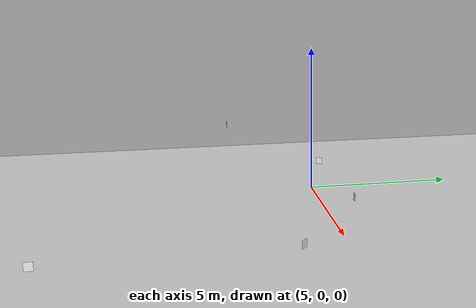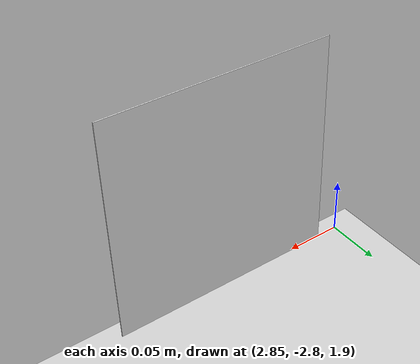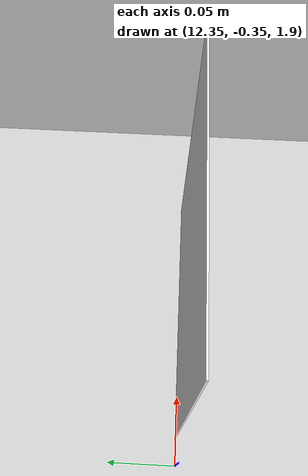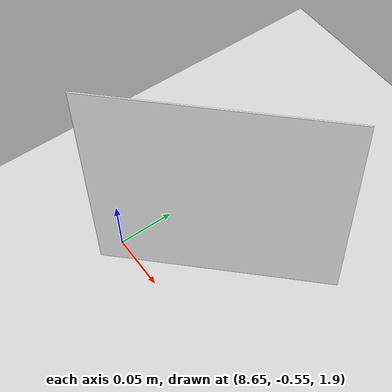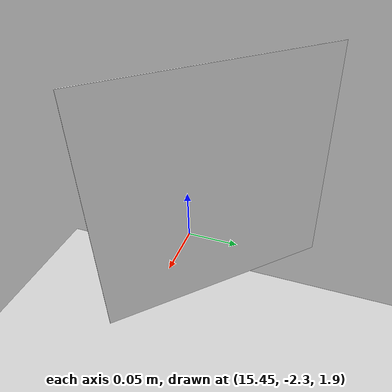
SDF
<sdf version="1.5">
 <world name="default">
  <scene><ambient>0.0 0.0 0.0 1.0</ambient><shadows>0</shadows></scene>
  <include><uri>model://sun</uri></include>
  <include><uri>model://ground_plane</uri></include>
  <include><pose>2.97 -2.8 2.0 0 1.57 0</pose><uri>model://aruco_1</uri></include>
  <include><pose>8.72 -0.5 2.0 0 1.57 0.785</pose><uri>model://aruco_2</uri></include>
  <include><pose>12.47 -0.35 2.0 0 1.57 0</pose><uri>model://aruco_3</uri></include>
  <include><pose>15.50 -2.25 2.0 0 1.57 -0.785</pose><uri>model://aruco_4</uri></include>
  <include><pose>15.65 -7.97 2.0 0 1.57 -1.57</pose><uri>model://aruco_5</uri></include>
 </world>
</sdf>

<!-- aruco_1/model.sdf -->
<sdf version="1.9">
  <model name="aruco_1">
    <static>true</static>
    <link name="link"><inertial><mass>1.0</mass><inertia><ixx>0.1</ixx><ixy>0</ixy><ixz>0</ixz><iyy>0.1</iyy><iyz>0</iyz><izz>0.1</izz></inertia></inertial>
      <visual name="visual">
        <pose>0 0 0 0 1.5708 0</pose>
        <geometry>
          <box>
            <size>0.20 0.001 0.20</size>
          </box>
        </geometry>
        <material>
          <ambient>1 1 1 1</ambient>
          <diffuse>1 1 1 1</diffuse>
          <pbr>
            <metal>
              <albedo_map>model://aruco_1/materials/textures/aruco_1.png</albedo_map>
            </metal>
          </pbr>
        </material>
      </visual>
    </link>
  </model>
</sdf>

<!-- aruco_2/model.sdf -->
<sdf version="1.9">
  <model name="aruco_2">
    <static>true</static>
    <link name="link"><inertial><mass>1.0</mass><inertia><ixx>0.1</ixx><ixy>0</ixy><ixz>0</ixz><iyy>0.1</iyy><iyz>0</iyz><izz>0.1</izz></inertia></inertial>
      <visual name="visual">
        <pose>0 0 0 0 1.5708 0</pose>
        <geometry>
          <box>
            <size>0.20 0.001 0.20</size>
          </box>
        </geometry>
        <material>
          <ambient>1 1 1 1</ambient>
          <diffuse>1 1 1 1</diffuse>
          <pbr>
            <metal>
              <albedo_map>model://aruco_2/materials/textures/aruco_2.png</albedo_map>
            </metal>
          </pbr>
        </material>
      </visual>
    </link>
  </model>
</sdf>

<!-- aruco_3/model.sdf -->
<sdf version="1.9">
  <model name="aruco_3">
    <static>true</static>
    <link name="link"><inertial><mass>1.0</mass><inertia><ixx>0.1</ixx><ixy>0</ixy><ixz>0</ixz><iyy>0.1</iyy><iyz>0</iyz><izz>0.1</izz></inertia></inertial>
      <visual name="visual">
        <pose>0 0 0 0 1.5708 0</pose>
        <geometry>
          <box>
            <size>0.20 0.001 0.20</size>
          </box>
        </geometry>
        <material>
          <ambient>1 1 1 1</ambient>
          <diffuse>1 1 1 1</diffuse>
          <pbr>
            <metal>
              <albedo_map>model://aruco_3/materials/textures/aruco_3.png</albedo_map>
            </metal>
          </pbr>
        </material>
      </visual>
    </link>
  </model>
</sdf>

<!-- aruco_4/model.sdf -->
<sdf version="1.9">
  <model name="aruco_4">
    <static>true</static>
    <link name="link"><inertial><mass>1.0</mass><inertia><ixx>0.1</ixx><ixy>0</ixy><ixz>0</ixz><iyy>0.1</iyy><iyz>0</iyz><izz>0.1</izz></inertia></inertial>
      <visual name="visual">
        <pose>0 0 0 0 1.5708 0</pose>
        <geometry>
          <box>
            <size>0.20 0.001 0.20</size>
          </box>
        </geometry>
        <material>
          <ambient>1 1 1 1</ambient>
          <diffuse>1 1 1 1</diffuse>
          <pbr>
            <metal>
              <albedo_map>model://aruco_4/materials/textures/aruco_4.png</albedo_map>
            </metal>
          </pbr>
        </material>
      </visual>
    </link>
  </model>
</sdf>

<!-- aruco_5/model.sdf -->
<sdf version="1.9">
  <model name="aruco_5">
    <static>true</static>
    <link name="link"><inertial><mass>1.0</mass><inertia><ixx>0.1</ixx><ixy>0</ixy><ixz>0</ixz><iyy>0.1</iyy><iyz>0</iyz><izz>0.1</izz></inertia></inertial>
      <visual name="visual">
        <pose>0 0 0 0 1.5708 0</pose>
        <geometry>
          <box>
            <size>0.20 0.001 0.20</size>
          </box>
        </geometry>
        <material>
          <ambient>1 1 1 1</ambient>
          <diffuse>1 1 1 1</diffuse>
          <pbr>
            <metal>
              <albedo_map>model://aruco_5/materials/textures/aruco_5.png</albedo_map>
            </metal>
          </pbr>
        </material>
      </visual>
    </link>
  </model>
</sdf>
